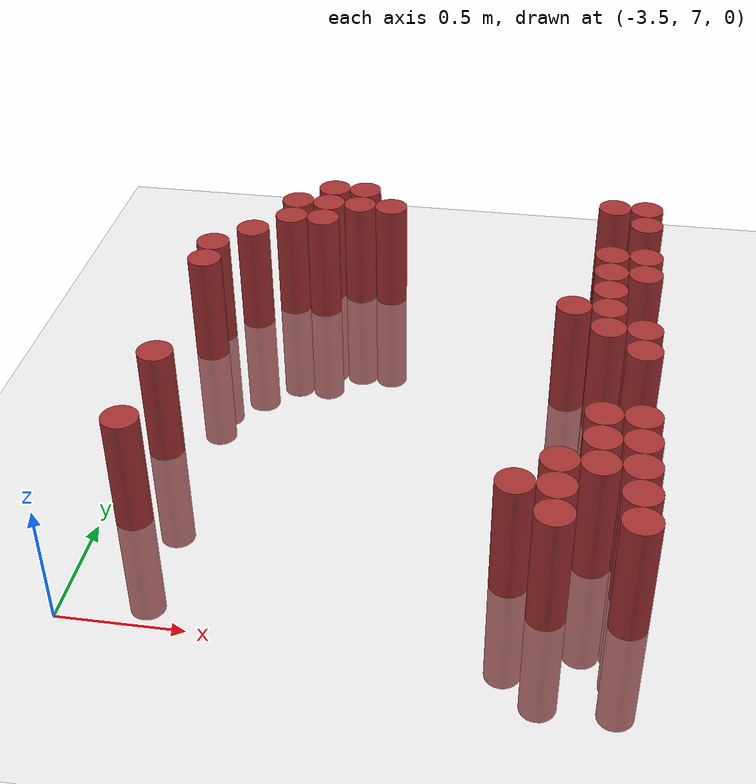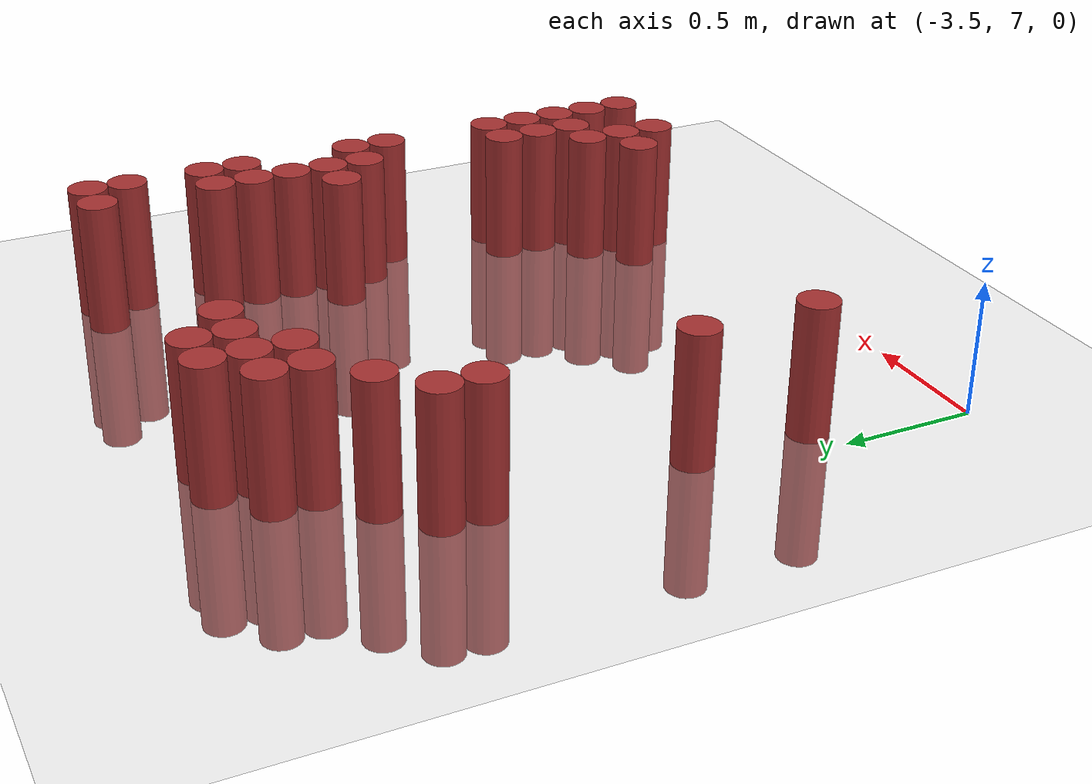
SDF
<sdf version="1.6">
 <world name="default">
  <model name="ground_plane">
   <static>1</static>
   <link name="link">
    <collision name="collision">
     <geometry><plane><normal>0 0 1</normal><size>100 100</size></plane></geometry>
     <surface><friction><ode><mu>100</mu><mu2>50</mu2></ode></friction></surface>
    </collision>
    <visual name="visual">
     <cast_shadows>0</cast_shadows>
     <geometry><plane><normal>0 0 1</normal><size>100 100</size></plane></geometry>
     <material>
      <script><uri>file://media/materials/scripts/gazebo.material</uri><name>Gazebo/Grey</name></script>
     </material>
    </visual>
   </link>
  </model>
  <model name="unit_cylinder_197">
   <static>1</static>
   <pose>-3.375000 7.575000 0.000000 0.000000 0.000000 0.000000</pose>
   <link name="link">
    <inertial>
     <mass>1</mass>
     <inertia><ixx>0.145833</ixx><ixy>0</ixy><ixz>0</ixz><iyy>0.145833</iyy><iyz>0</iyz><izz>0.125</izz></inertia>
    </inertial>
    <collision name="collision">
     <geometry><cylinder><radius>0.075000</radius><length>1</length></cylinder></geometry>
    </collision>
    <visual name="visual">
     <geometry><cylinder><radius>0.075000</radius><length>1</length></cylinder></geometry>
     <material>
      <ambient>0.648000 0.192000 0.192000 1</ambient>
      <diffuse>0.648000 0.192000 0.192000 1</diffuse>
     </material>
     <material>
      <script><name>Gazebo/Grey</name><uri>file://media/materials/scripts/gazebo.material</uri></script>
     </material>
    </visual>
    <sensor name="sensor_contact" type="contact"><contact><collision>collision</collision></contact></sensor>
   </link>
   <plugin filename="gz-sim-touchplugin-system" name="gz::sim::systems::TouchPlugin">
    <target>robot</target>
    <namespace>robot</namespace>
    <time>0.001</time>
    <enabled>true</enabled>
   </plugin>
  </model>
  <model name="unit_cylinder_198">
   <static>1</static>
   <pose>-3.375000 8.025000 0.000000 0.000000 0.000000 0.000000</pose>
   <link name="link">
    <inertial>
     <mass>1</mass>
     <inertia><ixx>0.145833</ixx><ixy>0</ixy><ixz>0</ixz><iyy>0.145833</iyy><iyz>0</iyz><izz>0.125</izz></inertia>
    </inertial>
    <collision name="collision">
     <geometry><cylinder><radius>0.075000</radius><length>1</length></cylinder></geometry>
    </collision>
    <visual name="visual">
     <geometry><cylinder><radius>0.075000</radius><length>1</length></cylinder></geometry>
     <material>
      <ambient>0.648000 0.192000 0.192000 1</ambient>
      <diffuse>0.648000 0.192000 0.192000 1</diffuse>
     </material>
     <material>
      <script><name>Gazebo/Grey</name><uri>file://media/materials/scripts/gazebo.material</uri></script>
     </material>
    </visual>
    <sensor name="sensor_contact" type="contact"><contact><collision>collision</collision></contact></sensor>
   </link>
   <plugin filename="gz-sim-touchplugin-system" name="gz::sim::systems::TouchPlugin">
    <target>robot</target>
    <namespace>robot</namespace>
    <time>0.001</time>
    <enabled>true</enabled>
   </plugin>
  </model>
  <model name="unit_cylinder_199">
   <static>1</static>
   <pose>-3.375000 8.775000 0.000000 0.000000 0.000000 0.000000</pose>
   <link name="link">
    <inertial>
     <mass>1</mass>
     <inertia><ixx>0.145833</ixx><ixy>0</ixy><ixz>0</ixz><iyy>0.145833</iyy><iyz>0</iyz><izz>0.125</izz></inertia>
    </inertial>
    <collision name="collision">
     <geometry><cylinder><radius>0.075000</radius><length>1</length></cylinder></geometry>
    </collision>
    <visual name="visual">
     <geometry><cylinder><radius>0.075000</radius><length>1</length></cylinder></geometry>
     <material>
      <ambient>0.648000 0.192000 0.192000 1</ambient>
      <diffuse>0.648000 0.192000 0.192000 1</diffuse>
     </material>
     <material>
      <script><name>Gazebo/Grey</name><uri>file://media/materials/scripts/gazebo.material</uri></script>
     </material>
    </visual>
    <sensor name="sensor_contact" type="contact"><contact><collision>collision</collision></contact></sensor>
   </link>
   <plugin filename="gz-sim-touchplugin-system" name="gz::sim::systems::TouchPlugin">
    <target>robot</target>
    <namespace>robot</namespace>
    <time>0.001</time>
    <enabled>true</enabled>
   </plugin>
  </model>
  <model name="unit_cylinder_200">
   <static>1</static>
   <pose>-3.375000 8.925000 0.000000 0.000000 0.000000 0.000000</pose>
   <link name="link">
    <inertial>
     <mass>1</mass>
     <inertia><ixx>0.145833</ixx><ixy>0</ixy><ixz>0</ixz><iyy>0.145833</iyy><iyz>0</iyz><izz>0.125</izz></inertia>
    </inertial>
    <collision name="collision">
     <geometry><cylinder><radius>0.075000</radius><length>1</length></cylinder></geometry>
    </collision>
    <visual name="visual">
     <geometry><cylinder><radius>0.075000</radius><length>1</length></cylinder></geometry>
     <material>
      <ambient>0.648000 0.192000 0.192000 1</ambient>
      <diffuse>0.648000 0.192000 0.192000 1</diffuse>
     </material>
     <material>
      <script><name>Gazebo/Grey</name><uri>file://media/materials/scripts/gazebo.material</uri></script>
     </material>
    </visual>
    <sensor name="sensor_contact" type="contact"><contact><collision>collision</collision></contact></sensor>
   </link>
   <plugin filename="gz-sim-touchplugin-system" name="gz::sim::systems::TouchPlugin">
    <target>robot</target>
    <namespace>robot</namespace>
    <time>0.001</time>
    <enabled>true</enabled>
   </plugin>
  </model>
  <model name="unit_cylinder_203">
   <static>1</static>
   <pose>-3.225000 9.075000 0.000000 0.000000 0.000000 0.000000</pose>
   <link name="link">
    <inertial>
     <mass>1</mass>
     <inertia><ixx>0.145833</ixx><ixy>0</ixy><ixz>0</ixz><iyy>0.145833</iyy><iyz>0</iyz><izz>0.125</izz></inertia>
    </inertial>
    <collision name="collision">
     <geometry><cylinder><radius>0.075000</radius><length>1</length></cylinder></geometry>
    </collision>
    <visual name="visual">
     <geometry><cylinder><radius>0.075000</radius><length>1</length></cylinder></geometry>
     <material>
      <ambient>0.648000 0.192000 0.192000 1</ambient>
      <diffuse>0.648000 0.192000 0.192000 1</diffuse>
     </material>
     <material>
      <script><name>Gazebo/Grey</name><uri>file://media/materials/scripts/gazebo.material</uri></script>
     </material>
    </visual>
    <sensor name="sensor_contact" type="contact"><contact><collision>collision</collision></contact></sensor>
   </link>
   <plugin filename="gz-sim-touchplugin-system" name="gz::sim::systems::TouchPlugin">
    <target>robot</target>
    <namespace>robot</namespace>
    <time>0.001</time>
    <enabled>true</enabled>
   </plugin>
  </model>
  <model name="unit_cylinder_207">
   <static>1</static>
   <pose>-3.075000 9.225000 0.000000 0.000000 0.000000 0.000000</pose>
   <link name="link">
    <inertial>
     <mass>1</mass>
     <inertia><ixx>0.145833</ixx><ixy>0</ixy><ixz>0</ixz><iyy>0.145833</iyy><iyz>0</iyz><izz>0.125</izz></inertia>
    </inertial>
    <collision name="collision">
     <geometry><cylinder><radius>0.075000</radius><length>1</length></cylinder></geometry>
    </collision>
    <visual name="visual">
     <geometry><cylinder><radius>0.075000</radius><length>1</length></cylinder></geometry>
     <material>
      <ambient>0.648000 0.192000 0.192000 1</ambient>
      <diffuse>0.648000 0.192000 0.192000 1</diffuse>
     </material>
     <material>
      <script><name>Gazebo/Grey</name><uri>file://media/materials/scripts/gazebo.material</uri></script>
     </material>
    </visual>
    <sensor name="sensor_contact" type="contact"><contact><collision>collision</collision></contact></sensor>
   </link>
   <plugin filename="gz-sim-touchplugin-system" name="gz::sim::systems::TouchPlugin">
    <target>robot</target>
    <namespace>robot</namespace>
    <time>0.001</time>
    <enabled>true</enabled>
   </plugin>
  </model>
  <model name="unit_cylinder_208">
   <static>1</static>
   <pose>-3.075000 9.375000 0.000000 0.000000 0.000000 0.000000</pose>
   <link name="link">
    <inertial>
     <mass>1</mass>
     <inertia><ixx>0.145833</ixx><ixy>0</ixy><ixz>0</ixz><iyy>0.145833</iyy><iyz>0</iyz><izz>0.125</izz></inertia>
    </inertial>
    <collision name="collision">
     <geometry><cylinder><radius>0.075000</radius><length>1</length></cylinder></geometry>
    </collision>
    <visual name="visual">
     <geometry><cylinder><radius>0.075000</radius><length>1</length></cylinder></geometry>
     <material>
      <ambient>0.648000 0.192000 0.192000 1</ambient>
      <diffuse>0.648000 0.192000 0.192000 1</diffuse>
     </material>
     <material>
      <script><name>Gazebo/Grey</name><uri>file://media/materials/scripts/gazebo.material</uri></script>
     </material>
    </visual>
    <sensor name="sensor_contact" type="contact"><contact><collision>collision</collision></contact></sensor>
   </link>
   <plugin filename="gz-sim-touchplugin-system" name="gz::sim::systems::TouchPlugin">
    <target>robot</target>
    <namespace>robot</namespace>
    <time>0.001</time>
    <enabled>true</enabled>
   </plugin>
  </model>
  <model name="unit_cylinder_211">
   <static>1</static>
   <pose>-2.925000 9.225000 0.000000 0.000000 0.000000 0.000000</pose>
   <link name="link">
    <inertial>
     <mass>1</mass>
     <inertia><ixx>0.145833</ixx><ixy>0</ixy><ixz>0</ixz><iyy>0.145833</iyy><iyz>0</iyz><izz>0.125</izz></inertia>
    </inertial>
    <collision name="collision">
     <geometry><cylinder><radius>0.075000</radius><length>1</length></cylinder></geometry>
    </collision>
    <visual name="visual">
     <geometry><cylinder><radius>0.075000</radius><length>1</length></cylinder></geometry>
     <material>
      <ambient>0.648000 0.192000 0.192000 1</ambient>
      <diffuse>0.648000 0.192000 0.192000 1</diffuse>
     </material>
     <material>
      <script><name>Gazebo/Grey</name><uri>file://media/materials/scripts/gazebo.material</uri></script>
     </material>
    </visual>
    <sensor name="sensor_contact" type="contact"><contact><collision>collision</collision></contact></sensor>
   </link>
   <plugin filename="gz-sim-touchplugin-system" name="gz::sim::systems::TouchPlugin">
    <target>robot</target>
    <namespace>robot</namespace>
    <time>0.001</time>
    <enabled>true</enabled>
   </plugin>
  </model>
  <model name="unit_cylinder_212">
   <static>1</static>
   <pose>-2.925000 9.375000 0.000000 0.000000 0.000000 0.000000</pose>
   <link name="link">
    <inertial>
     <mass>1</mass>
     <inertia><ixx>0.145833</ixx><ixy>0</ixy><ixz>0</ixz><iyy>0.145833</iyy><iyz>0</iyz><izz>0.125</izz></inertia>
    </inertial>
    <collision name="collision">
     <geometry><cylinder><radius>0.075000</radius><length>1</length></cylinder></geometry>
    </collision>
    <visual name="visual">
     <geometry><cylinder><radius>0.075000</radius><length>1</length></cylinder></geometry>
     <material>
      <ambient>0.648000 0.192000 0.192000 1</ambient>
      <diffuse>0.648000 0.192000 0.192000 1</diffuse>
     </material>
     <material>
      <script><name>Gazebo/Grey</name><uri>file://media/materials/scripts/gazebo.material</uri></script>
     </material>
    </visual>
    <sensor name="sensor_contact" type="contact"><contact><collision>collision</collision></contact></sensor>
   </link>
   <plugin filename="gz-sim-touchplugin-system" name="gz::sim::systems::TouchPlugin">
    <target>robot</target>
    <namespace>robot</namespace>
    <time>0.001</time>
    <enabled>true</enabled>
   </plugin>
  </model>
  <model name="unit_cylinder_213">
   <static>1</static>
   <pose>-2.925000 9.525000 0.000000 0.000000 0.000000 0.000000</pose>
   <link name="link">
    <inertial>
     <mass>1</mass>
     <inertia><ixx>0.145833</ixx><ixy>0</ixy><ixz>0</ixz><iyy>0.145833</iyy><iyz>0</iyz><izz>0.125</izz></inertia>
    </inertial>
    <collision name="collision">
     <geometry><cylinder><radius>0.075000</radius><length>1</length></cylinder></geometry>
    </collision>
    <visual name="visual">
     <geometry><cylinder><radius>0.075000</radius><length>1</length></cylinder></geometry>
     <material>
      <ambient>0.648000 0.192000 0.192000 1</ambient>
      <diffuse>0.648000 0.192000 0.192000 1</diffuse>
     </material>
     <material>
      <script><name>Gazebo/Grey</name><uri>file://media/materials/scripts/gazebo.material</uri></script>
     </material>
    </visual>
    <sensor name="sensor_contact" type="contact"><contact><collision>collision</collision></contact></sensor>
   </link>
   <plugin filename="gz-sim-touchplugin-system" name="gz::sim::systems::TouchPlugin">
    <target>robot</target>
    <namespace>robot</namespace>
    <time>0.001</time>
    <enabled>true</enabled>
   </plugin>
  </model>
  <model name="unit_cylinder_218">
   <static>1</static>
   <pose>-2.775000 9.375000 0.000000 0.000000 0.000000 0.000000</pose>
   <link name="link">
    <inertial>
     <mass>1</mass>
     <inertia><ixx>0.145833</ixx><ixy>0</ixy><ixz>0</ixz><iyy>0.145833</iyy><iyz>0</iyz><izz>0.125</izz></inertia>
    </inertial>
    <collision name="collision">
     <geometry><cylinder><radius>0.075000</radius><length>1</length></cylinder></geometry>
    </collision>
    <visual name="visual">
     <geometry><cylinder><radius>0.075000</radius><length>1</length></cylinder></geometry>
     <material>
      <ambient>0.648000 0.192000 0.192000 1</ambient>
      <diffuse>0.648000 0.192000 0.192000 1</diffuse>
     </material>
     <material>
      <script><name>Gazebo/Grey</name><uri>file://media/materials/scripts/gazebo.material</uri></script>
     </material>
    </visual>
    <sensor name="sensor_contact" type="contact"><contact><collision>collision</collision></contact></sensor>
   </link>
   <plugin filename="gz-sim-touchplugin-system" name="gz::sim::systems::TouchPlugin">
    <target>robot</target>
    <namespace>robot</namespace>
    <time>0.001</time>
    <enabled>true</enabled>
   </plugin>
  </model>
  <model name="unit_cylinder_219">
   <static>1</static>
   <pose>-2.775000 9.525000 0.000000 0.000000 0.000000 0.000000</pose>
   <link name="link">
    <inertial>
     <mass>1</mass>
     <inertia><ixx>0.145833</ixx><ixy>0</ixy><ixz>0</ixz><iyy>0.145833</iyy><iyz>0</iyz><izz>0.125</izz></inertia>
    </inertial>
    <collision name="collision">
     <geometry><cylinder><radius>0.075000</radius><length>1</length></cylinder></geometry>
    </collision>
    <visual name="visual">
     <geometry><cylinder><radius>0.075000</radius><length>1</length></cylinder></geometry>
     <material>
      <ambient>0.648000 0.192000 0.192000 1</ambient>
      <diffuse>0.648000 0.192000 0.192000 1</diffuse>
     </material>
     <material>
      <script><name>Gazebo/Grey</name><uri>file://media/materials/scripts/gazebo.material</uri></script>
     </material>
    </visual>
    <sensor name="sensor_contact" type="contact"><contact><collision>collision</collision></contact></sensor>
   </link>
   <plugin filename="gz-sim-touchplugin-system" name="gz::sim::systems::TouchPlugin">
    <target>robot</target>
    <namespace>robot</namespace>
    <time>0.001</time>
    <enabled>true</enabled>
   </plugin>
  </model>
  <model name="unit_cylinder_224">
   <static>1</static>
   <pose>-2.625000 9.375000 0.000000 0.000000 0.000000 0.000000</pose>
   <link name="link">
    <inertial>
     <mass>1</mass>
     <inertia><ixx>0.145833</ixx><ixy>0</ixy><ixz>0</ixz><iyy>0.145833</iyy><iyz>0</iyz><izz>0.125</izz></inertia>
    </inertial>
    <collision name="collision">
     <geometry><cylinder><radius>0.075000</radius><length>1</length></cylinder></geometry>
    </collision>
    <visual name="visual">
     <geometry><cylinder><radius>0.075000</radius><length>1</length></cylinder></geometry>
     <material>
      <ambient>0.648000 0.192000 0.192000 1</ambient>
      <diffuse>0.648000 0.192000 0.192000 1</diffuse>
     </material>
     <material>
      <script><name>Gazebo/Grey</name><uri>file://media/materials/scripts/gazebo.material</uri></script>
     </material>
    </visual>
    <sensor name="sensor_contact" type="contact"><contact><collision>collision</collision></contact></sensor>
   </link>
   <plugin filename="gz-sim-touchplugin-system" name="gz::sim::systems::TouchPlugin">
    <target>robot</target>
    <namespace>robot</namespace>
    <time>0.001</time>
    <enabled>true</enabled>
   </plugin>
  </model>
  <model name="unit_cylinder_230">
   <static>1</static>
   <pose>-1.875000 7.425000 0.000000 0.000000 0.000000 0.000000</pose>
   <link name="link">
    <inertial>
     <mass>1</mass>
     <inertia><ixx>0.145833</ixx><ixy>0</ixy><ixz>0</ixz><iyy>0.145833</iyy><iyz>0</iyz><izz>0.125</izz></inertia>
    </inertial>
    <collision name="collision">
     <geometry><cylinder><radius>0.075000</radius><length>1</length></cylinder></geometry>
    </collision>
    <visual name="visual">
     <geometry><cylinder><radius>0.075000</radius><length>1</length></cylinder></geometry>
     <material>
      <ambient>0.648000 0.192000 0.192000 1</ambient>
      <diffuse>0.648000 0.192000 0.192000 1</diffuse>
     </material>
     <material>
      <script><name>Gazebo/Grey</name><uri>file://media/materials/scripts/gazebo.material</uri></script>
     </material>
    </visual>
    <sensor name="sensor_contact" type="contact"><contact><collision>collision</collision></contact></sensor>
   </link>
   <plugin filename="gz-sim-touchplugin-system" name="gz::sim::systems::TouchPlugin">
    <target>robot</target>
    <namespace>robot</namespace>
    <time>0.001</time>
    <enabled>true</enabled>
   </plugin>
  </model>
  <model name="unit_cylinder_232">
   <static>1</static>
   <pose>-1.725000 7.275000 0.000000 0.000000 0.000000 0.000000</pose>
   <link name="link">
    <inertial>
     <mass>1</mass>
     <inertia><ixx>0.145833</ixx><ixy>0</ixy><ixz>0</ixz><iyy>0.145833</iyy><iyz>0</iyz><izz>0.125</izz></inertia>
    </inertial>
    <collision name="collision">
     <geometry><cylinder><radius>0.075000</radius><length>1</length></cylinder></geometry>
    </collision>
    <visual name="visual">
     <geometry><cylinder><radius>0.075000</radius><length>1</length></cylinder></geometry>
     <material>
      <ambient>0.648000 0.192000 0.192000 1</ambient>
      <diffuse>0.648000 0.192000 0.192000 1</diffuse>
     </material>
     <material>
      <script><name>Gazebo/Grey</name><uri>file://media/materials/scripts/gazebo.material</uri></script>
     </material>
    </visual>
    <sensor name="sensor_contact" type="contact"><contact><collision>collision</collision></contact></sensor>
   </link>
   <plugin filename="gz-sim-touchplugin-system" name="gz::sim::systems::TouchPlugin">
    <target>robot</target>
    <namespace>robot</namespace>
    <time>0.001</time>
    <enabled>true</enabled>
   </plugin>
  </model>
  <model name="unit_cylinder_233">
   <static>1</static>
   <pose>-1.725000 7.425000 0.000000 0.000000 0.000000 0.000000</pose>
   <link name="link">
    <inertial>
     <mass>1</mass>
     <inertia><ixx>0.145833</ixx><ixy>0</ixy><ixz>0</ixz><iyy>0.145833</iyy><iyz>0</iyz><izz>0.125</izz></inertia>
    </inertial>
    <collision name="collision">
     <geometry><cylinder><radius>0.075000</radius><length>1</length></cylinder></geometry>
    </collision>
    <visual name="visual">
     <geometry><cylinder><radius>0.075000</radius><length>1</length></cylinder></geometry>
     <material>
      <ambient>0.648000 0.192000 0.192000 1</ambient>
      <diffuse>0.648000 0.192000 0.192000 1</diffuse>
     </material>
     <material>
      <script><name>Gazebo/Grey</name><uri>file://media/materials/scripts/gazebo.material</uri></script>
     </material>
    </visual>
    <sensor name="sensor_contact" type="contact"><contact><collision>collision</collision></contact></sensor>
   </link>
   <plugin filename="gz-sim-touchplugin-system" name="gz::sim::systems::TouchPlugin">
    <target>robot</target>
    <namespace>robot</namespace>
    <time>0.001</time>
    <enabled>true</enabled>
   </plugin>
  </model>
  <model name="unit_cylinder_234">
   <static>1</static>
   <pose>-1.725000 7.575000 0.000000 0.000000 0.000000 0.000000</pose>
   <link name="link">
    <inertial>
     <mass>1</mass>
     <inertia><ixx>0.145833</ixx><ixy>0</ixy><ixz>0</ixz><iyy>0.145833</iyy><iyz>0</iyz><izz>0.125</izz></inertia>
    </inertial>
    <collision name="collision">
     <geometry><cylinder><radius>0.075000</radius><length>1</length></cylinder></geometry>
    </collision>
    <visual name="visual">
     <geometry><cylinder><radius>0.075000</radius><length>1</length></cylinder></geometry>
     <material>
      <ambient>0.648000 0.192000 0.192000 1</ambient>
      <diffuse>0.648000 0.192000 0.192000 1</diffuse>
     </material>
     <material>
      <script><name>Gazebo/Grey</name><uri>file://media/materials/scripts/gazebo.material</uri></script>
     </material>
    </visual>
    <sensor name="sensor_contact" type="contact"><contact><collision>collision</collision></contact></sensor>
   </link>
   <plugin filename="gz-sim-touchplugin-system" name="gz::sim::systems::TouchPlugin">
    <target>robot</target>
    <namespace>robot</namespace>
    <time>0.001</time>
    <enabled>true</enabled>
   </plugin>
  </model>
  <model name="unit_cylinder_235">
   <static>1</static>
   <pose>-1.725000 8.625000 0.000000 0.000000 0.000000 0.000000</pose>
   <link name="link">
    <inertial>
     <mass>1</mass>
     <inertia><ixx>0.145833</ixx><ixy>0</ixy><ixz>0</ixz><iyy>0.145833</iyy><iyz>0</iyz><izz>0.125</izz></inertia>
    </inertial>
    <collision name="collision">
     <geometry><cylinder><radius>0.075000</radius><length>1</length></cylinder></geometry>
    </collision>
    <visual name="visual">
     <geometry><cylinder><radius>0.075000</radius><length>1</length></cylinder></geometry>
     <material>
      <ambient>0.648000 0.192000 0.192000 1</ambient>
      <diffuse>0.648000 0.192000 0.192000 1</diffuse>
     </material>
     <material>
      <script><name>Gazebo/Grey</name><uri>file://media/materials/scripts/gazebo.material</uri></script>
     </material>
    </visual>
    <sensor name="sensor_contact" type="contact"><contact><collision>collision</collision></contact></sensor>
   </link>
   <plugin filename="gz-sim-touchplugin-system" name="gz::sim::systems::TouchPlugin">
    <target>robot</target>
    <namespace>robot</namespace>
    <time>0.001</time>
    <enabled>true</enabled>
   </plugin>
  </model>
  <model name="unit_cylinder_237">
   <static>1</static>
   <pose>-1.575000 7.575000 0.000000 0.000000 0.000000 0.000000</pose>
   <link name="link">
    <inertial>
     <mass>1</mass>
     <inertia><ixx>0.145833</ixx><ixy>0</ixy><ixz>0</ixz><iyy>0.145833</iyy><iyz>0</iyz><izz>0.125</izz></inertia>
    </inertial>
    <collision name="collision">
     <geometry><cylinder><radius>0.075000</radius><length>1</length></cylinder></geometry>
    </collision>
    <visual name="visual">
     <geometry><cylinder><radius>0.075000</radius><length>1</length></cylinder></geometry>
     <material>
      <ambient>0.648000 0.192000 0.192000 1</ambient>
      <diffuse>0.648000 0.192000 0.192000 1</diffuse>
     </material>
     <material>
      <script><name>Gazebo/Grey</name><uri>file://media/materials/scripts/gazebo.material</uri></script>
     </material>
    </visual>
    <sensor name="sensor_contact" type="contact"><contact><collision>collision</collision></contact></sensor>
   </link>
   <plugin filename="gz-sim-touchplugin-system" name="gz::sim::systems::TouchPlugin">
    <target>robot</target>
    <namespace>robot</namespace>
    <time>0.001</time>
    <enabled>true</enabled>
   </plugin>
  </model>
  <model name="unit_cylinder_238">
   <static>1</static>
   <pose>-1.575000 7.725000 0.000000 0.000000 0.000000 0.000000</pose>
   <link name="link">
    <inertial>
     <mass>1</mass>
     <inertia><ixx>0.145833</ixx><ixy>0</ixy><ixz>0</ixz><iyy>0.145833</iyy><iyz>0</iyz><izz>0.125</izz></inertia>
    </inertial>
    <collision name="collision">
     <geometry><cylinder><radius>0.075000</radius><length>1</length></cylinder></geometry>
    </collision>
    <visual name="visual">
     <geometry><cylinder><radius>0.075000</radius><length>1</length></cylinder></geometry>
     <material>
      <ambient>0.648000 0.192000 0.192000 1</ambient>
      <diffuse>0.648000 0.192000 0.192000 1</diffuse>
     </material>
     <material>
      <script><name>Gazebo/Grey</name><uri>file://media/materials/scripts/gazebo.material</uri></script>
     </material>
    </visual>
    <sensor name="sensor_contact" type="contact"><contact><collision>collision</collision></contact></sensor>
   </link>
   <plugin filename="gz-sim-touchplugin-system" name="gz::sim::systems::TouchPlugin">
    <target>robot</target>
    <namespace>robot</namespace>
    <time>0.001</time>
    <enabled>true</enabled>
   </plugin>
  </model>
  <model name="unit_cylinder_239">
   <static>1</static>
   <pose>-1.575000 7.875000 0.000000 0.000000 0.000000 0.000000</pose>
   <link name="link">
    <inertial>
     <mass>1</mass>
     <inertia><ixx>0.145833</ixx><ixy>0</ixy><ixz>0</ixz><iyy>0.145833</iyy><iyz>0</iyz><izz>0.125</izz></inertia>
    </inertial>
    <collision name="collision">
     <geometry><cylinder><radius>0.075000</radius><length>1</length></cylinder></geometry>
    </collision>
    <visual name="visual">
     <geometry><cylinder><radius>0.075000</radius><length>1</length></cylinder></geometry>
     <material>
      <ambient>0.648000 0.192000 0.192000 1</ambient>
      <diffuse>0.648000 0.192000 0.192000 1</diffuse>
     </material>
     <material>
      <script><name>Gazebo/Grey</name><uri>file://media/materials/scripts/gazebo.material</uri></script>
     </material>
    </visual>
    <sensor name="sensor_contact" type="contact"><contact><collision>collision</collision></contact></sensor>
   </link>
   <plugin filename="gz-sim-touchplugin-system" name="gz::sim::systems::TouchPlugin">
    <target>robot</target>
    <namespace>robot</namespace>
    <time>0.001</time>
    <enabled>true</enabled>
   </plugin>
  </model>
  <model name="unit_cylinder_240">
   <static>1</static>
   <pose>-1.575000 8.475000 0.000000 0.000000 0.000000 0.000000</pose>
   <link name="link">
    <inertial>
     <mass>1</mass>
     <inertia><ixx>0.145833</ixx><ixy>0</ixy><ixz>0</ixz><iyy>0.145833</iyy><iyz>0</iyz><izz>0.125</izz></inertia>
    </inertial>
    <collision name="collision">
     <geometry><cylinder><radius>0.075000</radius><length>1</length></cylinder></geometry>
    </collision>
    <visual name="visual">
     <geometry><cylinder><radius>0.075000</radius><length>1</length></cylinder></geometry>
     <material>
      <ambient>0.648000 0.192000 0.192000 1</ambient>
      <diffuse>0.648000 0.192000 0.192000 1</diffuse>
     </material>
     <material>
      <script><name>Gazebo/Grey</name><uri>file://media/materials/scripts/gazebo.material</uri></script>
     </material>
    </visual>
    <sensor name="sensor_contact" type="contact"><contact><collision>collision</collision></contact></sensor>
   </link>
   <plugin filename="gz-sim-touchplugin-system" name="gz::sim::systems::TouchPlugin">
    <target>robot</target>
    <namespace>robot</namespace>
    <time>0.001</time>
    <enabled>true</enabled>
   </plugin>
  </model>
  <model name="unit_cylinder_241">
   <static>1</static>
   <pose>-1.575000 8.625000 0.000000 0.000000 0.000000 0.000000</pose>
   <link name="link">
    <inertial>
     <mass>1</mass>
     <inertia><ixx>0.145833</ixx><ixy>0</ixy><ixz>0</ixz><iyy>0.145833</iyy><iyz>0</iyz><izz>0.125</izz></inertia>
    </inertial>
    <collision name="collision">
     <geometry><cylinder><radius>0.075000</radius><length>1</length></cylinder></geometry>
    </collision>
    <visual name="visual">
     <geometry><cylinder><radius>0.075000</radius><length>1</length></cylinder></geometry>
     <material>
      <ambient>0.648000 0.192000 0.192000 1</ambient>
      <diffuse>0.648000 0.192000 0.192000 1</diffuse>
     </material>
     <material>
      <script><name>Gazebo/Grey</name><uri>file://media/materials/scripts/gazebo.material</uri></script>
     </material>
    </visual>
    <sensor name="sensor_contact" type="contact"><contact><collision>collision</collision></contact></sensor>
   </link>
   <plugin filename="gz-sim-touchplugin-system" name="gz::sim::systems::TouchPlugin">
    <target>robot</target>
    <namespace>robot</namespace>
    <time>0.001</time>
    <enabled>true</enabled>
   </plugin>
  </model>
  <model name="unit_cylinder_242">
   <static>1</static>
   <pose>-1.575000 8.775000 0.000000 0.000000 0.000000 0.000000</pose>
   <link name="link">
    <inertial>
     <mass>1</mass>
     <inertia><ixx>0.145833</ixx><ixy>0</ixy><ixz>0</ixz><iyy>0.145833</iyy><iyz>0</iyz><izz>0.125</izz></inertia>
    </inertial>
    <collision name="collision">
     <geometry><cylinder><radius>0.075000</radius><length>1</length></cylinder></geometry>
    </collision>
    <visual name="visual">
     <geometry><cylinder><radius>0.075000</radius><length>1</length></cylinder></geometry>
     <material>
      <ambient>0.648000 0.192000 0.192000 1</ambient>
      <diffuse>0.648000 0.192000 0.192000 1</diffuse>
     </material>
     <material>
      <script><name>Gazebo/Grey</name><uri>file://media/materials/scripts/gazebo.material</uri></script>
     </material>
    </visual>
    <sensor name="sensor_contact" type="contact"><contact><collision>collision</collision></contact></sensor>
   </link>
   <plugin filename="gz-sim-touchplugin-system" name="gz::sim::systems::TouchPlugin">
    <target>robot</target>
    <namespace>robot</namespace>
    <time>0.001</time>
    <enabled>true</enabled>
   </plugin>
  </model>
  <model name="unit_cylinder_243">
   <static>1</static>
   <pose>-1.575000 8.925000 0.000000 0.000000 0.000000 0.000000</pose>
   <link name="link">
    <inertial>
     <mass>1</mass>
     <inertia><ixx>0.145833</ixx><ixy>0</ixy><ixz>0</ixz><iyy>0.145833</iyy><iyz>0</iyz><izz>0.125</izz></inertia>
    </inertial>
    <collision name="collision">
     <geometry><cylinder><radius>0.075000</radius><length>1</length></cylinder></geometry>
    </collision>
    <visual name="visual">
     <geometry><cylinder><radius>0.075000</radius><length>1</length></cylinder></geometry>
     <material>
      <ambient>0.648000 0.192000 0.192000 1</ambient>
      <diffuse>0.648000 0.192000 0.192000 1</diffuse>
     </material>
     <material>
      <script><name>Gazebo/Grey</name><uri>file://media/materials/scripts/gazebo.material</uri></script>
     </material>
    </visual>
    <sensor name="sensor_contact" type="contact"><contact><collision>collision</collision></contact></sensor>
   </link>
   <plugin filename="gz-sim-touchplugin-system" name="gz::sim::systems::TouchPlugin">
    <target>robot</target>
    <namespace>robot</namespace>
    <time>0.001</time>
    <enabled>true</enabled>
   </plugin>
  </model>
  <model name="unit_cylinder_244">
   <static>1</static>
   <pose>-1.575000 9.075000 0.000000 0.000000 0.000000 0.000000</pose>
   <link name="link">
    <inertial>
     <mass>1</mass>
     <inertia><ixx>0.145833</ixx><ixy>0</ixy><ixz>0</ixz><iyy>0.145833</iyy><iyz>0</iyz><izz>0.125</izz></inertia>
    </inertial>
    <collision name="collision">
     <geometry><cylinder><radius>0.075000</radius><length>1</length></cylinder></geometry>
    </collision>
    <visual name="visual">
     <geometry><cylinder><radius>0.075000</radius><length>1</length></cylinder></geometry>
     <material>
      <ambient>0.648000 0.192000 0.192000 1</ambient>
      <diffuse>0.648000 0.192000 0.192000 1</diffuse>
     </material>
     <material>
      <script><name>Gazebo/Grey</name><uri>file://media/materials/scripts/gazebo.material</uri></script>
     </material>
    </visual>
    <sensor name="sensor_contact" type="contact"><contact><collision>collision</collision></contact></sensor>
   </link>
   <plugin filename="gz-sim-touchplugin-system" name="gz::sim::systems::TouchPlugin">
    <target>robot</target>
    <namespace>robot</namespace>
    <time>0.001</time>
    <enabled>true</enabled>
   </plugin>
  </model>
  <model name="unit_cylinder_245">
   <static>1</static>
   <pose>-1.575000 9.525000 0.000000 0.000000 0.000000 0.000000</pose>
   <link name="link">
    <inertial>
     <mass>1</mass>
     <inertia><ixx>0.145833</ixx><ixy>0</ixy><ixz>0</ixz><iyy>0.145833</iyy><iyz>0</iyz><izz>0.125</izz></inertia>
    </inertial>
    <collision name="collision">
     <geometry><cylinder><radius>0.075000</radius><length>1</length></cylinder></geometry>
    </collision>
    <visual name="visual">
     <geometry><cylinder><radius>0.075000</radius><length>1</length></cylinder></geometry>
     <material>
      <ambient>0.648000 0.192000 0.192000 1</ambient>
      <diffuse>0.648000 0.192000 0.192000 1</diffuse>
     </material>
     <material>
      <script><name>Gazebo/Grey</name><uri>file://media/materials/scripts/gazebo.material</uri></script>
     </material>
    </visual>
    <sensor name="sensor_contact" type="contact"><contact><collision>collision</collision></contact></sensor>
   </link>
   <plugin filename="gz-sim-touchplugin-system" name="gz::sim::systems::TouchPlugin">
    <target>robot</target>
    <namespace>robot</namespace>
    <time>0.001</time>
    <enabled>true</enabled>
   </plugin>
  </model>
  <model name="unit_cylinder_248">
   <static>1</static>
   <pose>-1.425000 7.275000 0.000000 0.000000 0.000000 0.000000</pose>
   <link name="link">
    <inertial>
     <mass>1</mass>
     <inertia><ixx>0.145833</ixx><ixy>0</ixy><ixz>0</ixz><iyy>0.145833</iyy><iyz>0</iyz><izz>0.125</izz></inertia>
    </inertial>
    <collision name="collision">
     <geometry><cylinder><radius>0.075000</radius><length>1</length></cylinder></geometry>
    </collision>
    <visual name="visual">
     <geometry><cylinder><radius>0.075000</radius><length>1</length></cylinder></geometry>
     <material>
      <ambient>0.648000 0.192000 0.192000 1</ambient>
      <diffuse>0.648000 0.192000 0.192000 1</diffuse>
     </material>
     <material>
      <script><name>Gazebo/Grey</name><uri>file://media/materials/scripts/gazebo.material</uri></script>
     </material>
    </visual>
    <sensor name="sensor_contact" type="contact"><contact><collision>collision</collision></contact></sensor>
   </link>
   <plugin filename="gz-sim-touchplugin-system" name="gz::sim::systems::TouchPlugin">
    <target>robot</target>
    <namespace>robot</namespace>
    <time>0.001</time>
    <enabled>true</enabled>
   </plugin>
  </model>
  <model name="unit_cylinder_249">
   <static>1</static>
   <pose>-1.425000 7.425000 0.000000 0.000000 0.000000 0.000000</pose>
   <link name="link">
    <inertial>
     <mass>1</mass>
     <inertia><ixx>0.145833</ixx><ixy>0</ixy><ixz>0</ixz><iyy>0.145833</iyy><iyz>0</iyz><izz>0.125</izz></inertia>
    </inertial>
    <collision name="collision">
     <geometry><cylinder><radius>0.075000</radius><length>1</length></cylinder></geometry>
    </collision>
    <visual name="visual">
     <geometry><cylinder><radius>0.075000</radius><length>1</length></cylinder></geometry>
     <material>
      <ambient>0.648000 0.192000 0.192000 1</ambient>
      <diffuse>0.648000 0.192000 0.192000 1</diffuse>
     </material>
     <material>
      <script><name>Gazebo/Grey</name><uri>file://media/materials/scripts/gazebo.material</uri></script>
     </material>
    </visual>
    <sensor name="sensor_contact" type="contact"><contact><collision>collision</collision></contact></sensor>
   </link>
   <plugin filename="gz-sim-touchplugin-system" name="gz::sim::systems::TouchPlugin">
    <target>robot</target>
    <namespace>robot</namespace>
    <time>0.001</time>
    <enabled>true</enabled>
   </plugin>
  </model>
  <model name="unit_cylinder_250">
   <static>1</static>
   <pose>-1.425000 7.575000 0.000000 0.000000 0.000000 0.000000</pose>
   <link name="link">
    <inertial>
     <mass>1</mass>
     <inertia><ixx>0.145833</ixx><ixy>0</ixy><ixz>0</ixz><iyy>0.145833</iyy><iyz>0</iyz><izz>0.125</izz></inertia>
    </inertial>
    <collision name="collision">
     <geometry><cylinder><radius>0.075000</radius><length>1</length></cylinder></geometry>
    </collision>
    <visual name="visual">
     <geometry><cylinder><radius>0.075000</radius><length>1</length></cylinder></geometry>
     <material>
      <ambient>0.648000 0.192000 0.192000 1</ambient>
      <diffuse>0.648000 0.192000 0.192000 1</diffuse>
     </material>
     <material>
      <script><name>Gazebo/Grey</name><uri>file://media/materials/scripts/gazebo.material</uri></script>
     </material>
    </visual>
    <sensor name="sensor_contact" type="contact"><contact><collision>collision</collision></contact></sensor>
   </link>
   <plugin filename="gz-sim-touchplugin-system" name="gz::sim::systems::TouchPlugin">
    <target>robot</target>
    <namespace>robot</namespace>
    <time>0.001</time>
    <enabled>true</enabled>
   </plugin>
  </model>
  <model name="unit_cylinder_251">
   <static>1</static>
   <pose>-1.425000 7.725000 0.000000 0.000000 0.000000 0.000000</pose>
   <link name="link">
    <inertial>
     <mass>1</mass>
     <inertia><ixx>0.145833</ixx><ixy>0</ixy><ixz>0</ixz><iyy>0.145833</iyy><iyz>0</iyz><izz>0.125</izz></inertia>
    </inertial>
    <collision name="collision">
     <geometry><cylinder><radius>0.075000</radius><length>1</length></cylinder></geometry>
    </collision>
    <visual name="visual">
     <geometry><cylinder><radius>0.075000</radius><length>1</length></cylinder></geometry>
     <material>
      <ambient>0.648000 0.192000 0.192000 1</ambient>
      <diffuse>0.648000 0.192000 0.192000 1</diffuse>
     </material>
     <material>
      <script><name>Gazebo/Grey</name><uri>file://media/materials/scripts/gazebo.material</uri></script>
     </material>
    </visual>
    <sensor name="sensor_contact" type="contact"><contact><collision>collision</collision></contact></sensor>
   </link>
   <plugin filename="gz-sim-touchplugin-system" name="gz::sim::systems::TouchPlugin">
    <target>robot</target>
    <namespace>robot</namespace>
    <time>0.001</time>
    <enabled>true</enabled>
   </plugin>
  </model>
  <model name="unit_cylinder_252">
   <static>1</static>
   <pose>-1.425000 7.875000 0.000000 0.000000 0.000000 0.000000</pose>
   <link name="link">
    <inertial>
     <mass>1</mass>
     <inertia><ixx>0.145833</ixx><ixy>0</ixy><ixz>0</ixz><iyy>0.145833</iyy><iyz>0</iyz><izz>0.125</izz></inertia>
    </inertial>
    <collision name="collision">
     <geometry><cylinder><radius>0.075000</radius><length>1</length></cylinder></geometry>
    </collision>
    <visual name="visual">
     <geometry><cylinder><radius>0.075000</radius><length>1</length></cylinder></geometry>
     <material>
      <ambient>0.648000 0.192000 0.192000 1</ambient>
      <diffuse>0.648000 0.192000 0.192000 1</diffuse>
     </material>
     <material>
      <script><name>Gazebo/Grey</name><uri>file://media/materials/scripts/gazebo.material</uri></script>
     </material>
    </visual>
    <sensor name="sensor_contact" type="contact"><contact><collision>collision</collision></contact></sensor>
   </link>
   <plugin filename="gz-sim-touchplugin-system" name="gz::sim::systems::TouchPlugin">
    <target>robot</target>
    <namespace>robot</namespace>
    <time>0.001</time>
    <enabled>true</enabled>
   </plugin>
  </model>
  <model name="unit_cylinder_253">
   <static>1</static>
   <pose>-1.425000 8.325000 0.000000 0.000000 0.000000 0.000000</pose>
   <link name="link">
    <inertial>
     <mass>1</mass>
     <inertia><ixx>0.145833</ixx><ixy>0</ixy><ixz>0</ixz><iyy>0.145833</iyy><iyz>0</iyz><izz>0.125</izz></inertia>
    </inertial>
    <collision name="collision">
     <geometry><cylinder><radius>0.075000</radius><length>1</length></cylinder></geometry>
    </collision>
    <visual name="visual">
     <geometry><cylinder><radius>0.075000</radius><length>1</length></cylinder></geometry>
     <material>
      <ambient>0.648000 0.192000 0.192000 1</ambient>
      <diffuse>0.648000 0.192000 0.192000 1</diffuse>
     </material>
     <material>
      <script><name>Gazebo/Grey</name><uri>file://media/materials/scripts/gazebo.material</uri></script>
     </material>
    </visual>
    <sensor name="sensor_contact" type="contact"><contact><collision>collision</collision></contact></sensor>
   </link>
   <plugin filename="gz-sim-touchplugin-system" name="gz::sim::systems::TouchPlugin">
    <target>robot</target>
    <namespace>robot</namespace>
    <time>0.001</time>
    <enabled>true</enabled>
   </plugin>
  </model>
  <model name="unit_cylinder_254">
   <static>1</static>
   <pose>-1.425000 8.475000 0.000000 0.000000 0.000000 0.000000</pose>
   <link name="link">
    <inertial>
     <mass>1</mass>
     <inertia><ixx>0.145833</ixx><ixy>0</ixy><ixz>0</ixz><iyy>0.145833</iyy><iyz>0</iyz><izz>0.125</izz></inertia>
    </inertial>
    <collision name="collision">
     <geometry><cylinder><radius>0.075000</radius><length>1</length></cylinder></geometry>
    </collision>
    <visual name="visual">
     <geometry><cylinder><radius>0.075000</radius><length>1</length></cylinder></geometry>
     <material>
      <ambient>0.648000 0.192000 0.192000 1</ambient>
      <diffuse>0.648000 0.192000 0.192000 1</diffuse>
     </material>
     <material>
      <script><name>Gazebo/Grey</name><uri>file://media/materials/scripts/gazebo.material</uri></script>
     </material>
    </visual>
    <sensor name="sensor_contact" type="contact"><contact><collision>collision</collision></contact></sensor>
   </link>
   <plugin filename="gz-sim-touchplugin-system" name="gz::sim::systems::TouchPlugin">
    <target>robot</target>
    <namespace>robot</namespace>
    <time>0.001</time>
    <enabled>true</enabled>
   </plugin>
  </model>
  <model name="unit_cylinder_255">
   <static>1</static>
   <pose>-1.425000 8.925000 0.000000 0.000000 0.000000 0.000000</pose>
   <link name="link">
    <inertial>
     <mass>1</mass>
     <inertia><ixx>0.145833</ixx><ixy>0</ixy><ixz>0</ixz><iyy>0.145833</iyy><iyz>0</iyz><izz>0.125</izz></inertia>
    </inertial>
    <collision name="collision">
     <geometry><cylinder><radius>0.075000</radius><length>1</length></cylinder></geometry>
    </collision>
    <visual name="visual">
     <geometry><cylinder><radius>0.075000</radius><length>1</length></cylinder></geometry>
     <material>
      <ambient>0.648000 0.192000 0.192000 1</ambient>
      <diffuse>0.648000 0.192000 0.192000 1</diffuse>
     </material>
     <material>
      <script><name>Gazebo/Grey</name><uri>file://media/materials/scripts/gazebo.material</uri></script>
     </material>
    </visual>
    <sensor name="sensor_contact" type="contact"><contact><collision>collision</collision></contact></sensor>
   </link>
   <plugin filename="gz-sim-touchplugin-system" name="gz::sim::systems::TouchPlugin">
    <target>robot</target>
    <namespace>robot</namespace>
    <time>0.001</time>
    <enabled>true</enabled>
   </plugin>
  </model>
  <model name="unit_cylinder_256">
   <static>1</static>
   <pose>-1.425000 9.075000 0.000000 0.000000 0.000000 0.000000</pose>
   <link name="link">
    <inertial>
     <mass>1</mass>
     <inertia><ixx>0.145833</ixx><ixy>0</ixy><ixz>0</ixz><iyy>0.145833</iyy><iyz>0</iyz><izz>0.125</izz></inertia>
    </inertial>
    <collision name="collision">
     <geometry><cylinder><radius>0.075000</radius><length>1</length></cylinder></geometry>
    </collision>
    <visual name="visual">
     <geometry><cylinder><radius>0.075000</radius><length>1</length></cylinder></geometry>
     <material>
      <ambient>0.648000 0.192000 0.192000 1</ambient>
      <diffuse>0.648000 0.192000 0.192000 1</diffuse>
     </material>
     <material>
      <script><name>Gazebo/Grey</name><uri>file://media/materials/scripts/gazebo.material</uri></script>
     </material>
    </visual>
    <sensor name="sensor_contact" type="contact"><contact><collision>collision</collision></contact></sensor>
   </link>
   <plugin filename="gz-sim-touchplugin-system" name="gz::sim::systems::TouchPlugin">
    <target>robot</target>
    <namespace>robot</namespace>
    <time>0.001</time>
    <enabled>true</enabled>
   </plugin>
  </model>
  <model name="unit_cylinder_257">
   <static>1</static>
   <pose>-1.425000 9.375000 0.000000 0.000000 0.000000 0.000000</pose>
   <link name="link">
    <inertial>
     <mass>1</mass>
     <inertia><ixx>0.145833</ixx><ixy>0</ixy><ixz>0</ixz><iyy>0.145833</iyy><iyz>0</iyz><izz>0.125</izz></inertia>
    </inertial>
    <collision name="collision">
     <geometry><cylinder><radius>0.075000</radius><length>1</length></cylinder></geometry>
    </collision>
    <visual name="visual">
     <geometry><cylinder><radius>0.075000</radius><length>1</length></cylinder></geometry>
     <material>
      <ambient>0.648000 0.192000 0.192000 1</ambient>
      <diffuse>0.648000 0.192000 0.192000 1</diffuse>
     </material>
     <material>
      <script><name>Gazebo/Grey</name><uri>file://media/materials/scripts/gazebo.material</uri></script>
     </material>
    </visual>
    <sensor name="sensor_contact" type="contact"><contact><collision>collision</collision></contact></sensor>
   </link>
   <plugin filename="gz-sim-touchplugin-system" name="gz::sim::systems::TouchPlugin">
    <target>robot</target>
    <namespace>robot</namespace>
    <time>0.001</time>
    <enabled>true</enabled>
   </plugin>
  </model>
  <model name="unit_cylinder_258">
   <static>1</static>
   <pose>-1.425000 9.525000 0.000000 0.000000 0.000000 0.000000</pose>
   <link name="link">
    <inertial>
     <mass>1</mass>
     <inertia><ixx>0.145833</ixx><ixy>0</ixy><ixz>0</ixz><iyy>0.145833</iyy><iyz>0</iyz><izz>0.125</izz></inertia>
    </inertial>
    <collision name="collision">
     <geometry><cylinder><radius>0.075000</radius><length>1</length></cylinder></geometry>
    </collision>
    <visual name="visual">
     <geometry><cylinder><radius>0.075000</radius><length>1</length></cylinder></geometry>
     <material>
      <ambient>0.648000 0.192000 0.192000 1</ambient>
      <diffuse>0.648000 0.192000 0.192000 1</diffuse>
     </material>
     <material>
      <script><name>Gazebo/Grey</name><uri>file://media/materials/scripts/gazebo.material</uri></script>
     </material>
    </visual>
    <sensor name="sensor_contact" type="contact"><contact><collision>collision</collision></contact></sensor>
   </link>
   <plugin filename="gz-sim-touchplugin-system" name="gz::sim::systems::TouchPlugin">
    <target>robot</target>
    <namespace>robot</namespace>
    <time>0.001</time>
    <enabled>true</enabled>
   </plugin>
  </model>
 </world>
</sdf>
